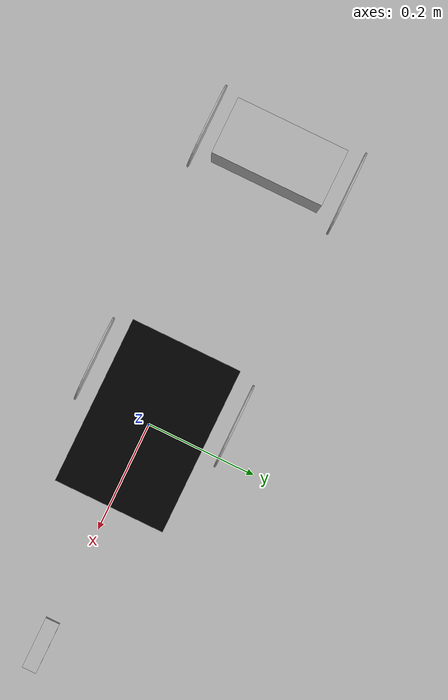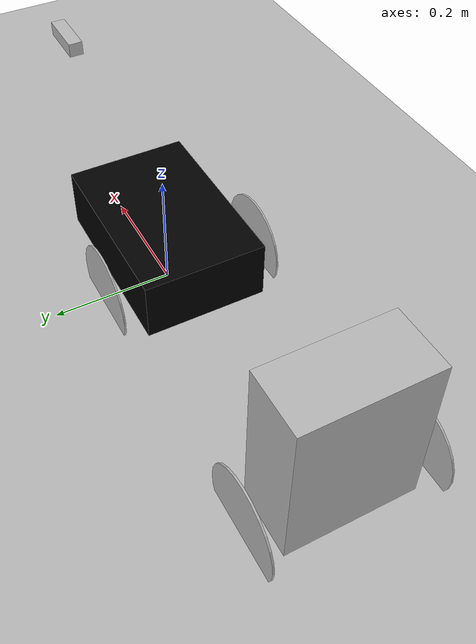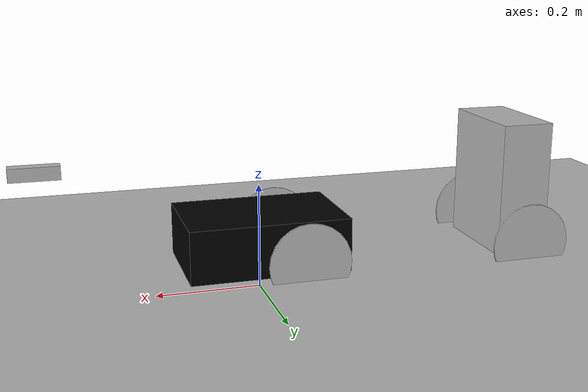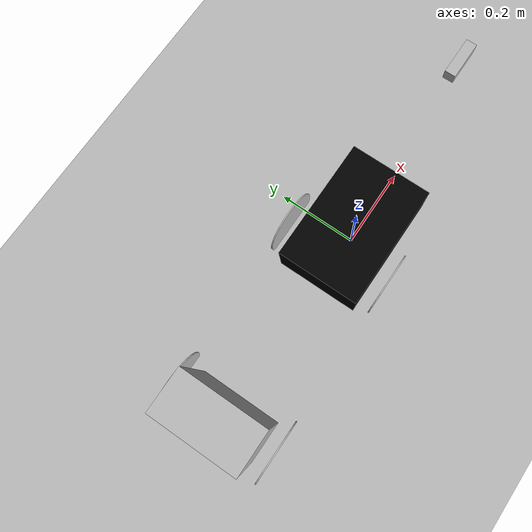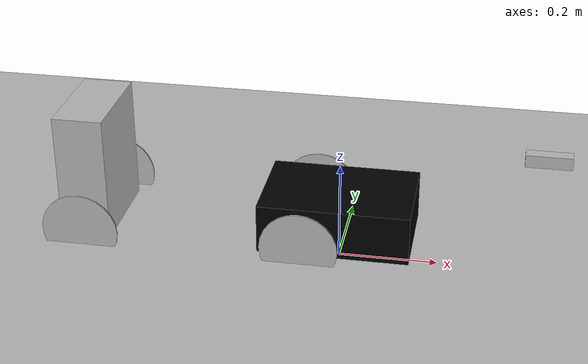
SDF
<sdf version="1.4">
 <world name="default">
  <model name="99hallway">
   <static>true</static>
   <link name="ground">
    <collision name="ground_collision"><geometry><box><size>50 50 0.1</size></box></geometry></collision>
    <visual name="ground_visual"><geometry><box><size>50 50 0.1</size></box></geometry></visual>
   </link>
  </model>
  <include><uri>model://sim_glide_description</uri></include>
 </world>
</sdf>

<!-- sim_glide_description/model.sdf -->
<sdf version="1.5">
      <model name="sim_glide_bot">
        <link name="base_link">
            <pose>0 0 0.1 0 0 0</pose>
            <collision name="base_collision">
                <geometry>
                    <box>
                        <size>0.3 0.2 0.1</size>
                    </box>
                </geometry>
            </collision>

            <visual name="base_visual">
                <geometry>
                    <box>
                        <size>0.3 0.2 0.1</size>
                    </box>
                </geometry>
                <material>
                    <ambient>0.0 0.0 0.0 1.0</ambient>
                    <diffuse>0.0 0.0 0.0 1.0</diffuse>
                    <specular>0.0 0.0 0.0 1.0</specular>
                    <emissive>0.0 0.0 0.0 1.0</emissive>
                </material>
            </visual>
        </link>

        <link name="front_left_wheel">
            <pose>-0.061900000000000004 0.13175 0.08 1.5707963267948966 0 3.14159265359</pose>
            <visual name ="front_left_wheel_visual">
                <geometry>
                    <cylinder>
                        <length>0.003</length>
                        <radius>0.077</radius>
                    </cylinder>
                </geometry>
            </visual>

            <inertial>
                <mass>5</mass>
                <inertia>
                    <ixx>7.90866056</ixx>
                    <ixy>0.00000006</ixy>
                    <ixz>0.0</ixz>
                    <iyy>7.90866056</iyy>
                    <iyz>0.0</iyz>
                    <izz>2.48398783</izz>
                </inertia>
            </inertial>

            <collision name ="front_left_wheel_collision">
                <geometry>
                    <cylinder>
                        <length>0.003</length>
                        <radius>0.077</radius>
                    </cylinder>
                </geometry>
            </collision>
        </link>

        <link name="front_right_wheel">
            <pose>-0.061900000000000004 -0.13175 0.08 1.5707963267948966 0 3.14159265359</pose>
            <visual name ="front_right_wheel_visual">
                <geometry>
                    <cylinder>
                        <radius>0.077</radius>
                        <length>0.003</length>
                    </cylinder>
                </geometry>
            </visual>

            <inertial>
                <mass>5</mass>
                <inertia>
                    <ixx>7.90866056</ixx>
                    <ixy>0.00000006</ixy>
                    <ixz>0.0</ixz>
                    <iyy>7.90866056</iyy>
                    <iyz>0.0</iyz>
                    <izz>2.48398783</izz>
                </inertia>
            </inertial>

            <collision name="front_right_wheel_collision">
                <geometry>
                    <cylinder>
                        <radius>0.077</radius>
                        <length>0.003</length>
                    </cylinder>
                </geometry>
            </collision>
        </link>

      <link name="rear_left_wheel">
        <pose>-0.5 0.13175 0.08 1.5707963267948966 0 3.14159265359</pose>
            <visual name ="rear_left_wheel_visual">
                <geometry>
                    <cylinder>
                        <length>0.003</length>
                        <radius>0.077</radius>
                    </cylinder>
                </geometry>
            </visual>

            <inertial>
                <mass>5</mass>
                <inertia>
                    <ixx>7.90866056</ixx>
                    <ixy>0.00000006</ixy>
                    <ixz>0.0</ixz>
                    <iyy>7.90866056</iyy>
                    <iyz>0.0</iyz>
                    <izz>2.48398783</izz>
                </inertia>
            </inertial>

            <collision name ="rear_left_wheel_collision">
                <geometry>
                    <cylinder>
                        <length>0.003</length>
                        <radius>0.077</radius>
                    </cylinder>
                </geometry>
            </collision>
      </link>

      <link name="rear_right_wheel">
        <pose>-0.5 -0.13175 0.08 1.5707963267948966 0 3.14159265359</pose>
            <visual name ="rear_right_steer_wheel_visual">
                <geometry>
                    <cylinder>
                        <radius>0.077</radius>
                        <length>0.003</length>
                    </cylinder>
                </geometry>
            </visual>

            <inertial>
                <mass>5</mass>
                <inertia>
                    <ixx>7.90866056</ixx>
                    <ixy>0.00000006</ixy>
                    <ixz>0.0</ixz>
                    <iyy>7.90866056</iyy>
                    <iyz>0.0</iyz>
                    <izz>2.48398783</izz>
                </inertia>
            </inertial>

            <collision name="rear_right_steer_wheel_collision">
                <geometry>
                    <cylinder>
                        <radius>0.077</radius>
                        <length>0.003</length>
                    </cylinder>
                </geometry>
            </collision>
      </link>

      <joint type="universal" name="front_left_wheel_joint">
        <pose>0 0 0 0 0 0</pose>
        <child>front_left_wheel</child>
        <parent>base_link</parent>
        <axis>
            <xyz>0 1 0</xyz>
            <limit>
                <lower>-0.9</lower>
                <upper>0.9</upper>
            </limit>
        </axis>
        <axis2>
            <xyz>0 0 1</xyz>
        </axis2>
      </joint>

      <joint type="universal" name="front_right_wheel_joint">
        <pose>0 0 0 0 0 0</pose>
        <child>front_right_wheel</child>
        <parent>base_link</parent>
        <axis>
            <xyz>0 1 0</xyz>
            <limit>
                <lower>-0.9</lower>
                <upper>0.9</upper>
            </limit>
        </axis>
        <axis2>
          <xyz>0 0 1</xyz>
        </axis2>
      </joint>

      <joint type="revolute" name="rear_left_wheel_joint">
          <child>rear_left_wheel</child>
          <parent>base_link</parent>
          <axis>
              <xyz>0 0 1</xyz>
          </axis>
      </joint>
      <joint type="revolute" name="rear_right_wheel_joint">
          <child>rear_right_wheel</child>
          <parent>base_link</parent>
          <axis>
              <xyz>0 0 1</xyz>
          </axis>
      </joint>

      <link name="human_link">
          <pose>-0.5 0.0 0.154 0 1.5707963267948966 0</pose>
          <visual name ="human_visual">
              <geometry>
                  <box>
                      <size>0.3 0.2 0.1</size>
                  </box>
              </geometry>
          </visual>

          <collision name="human_collision">
              <geometry>
                  <box>
                      <size>0.3 0.2 0.1</size>
                  </box>
              </geometry>
          </collision>
      </link>
      <joint name="base_to_human" type="fixed">
          <pose>0 0 0 0 0 0</pose>
          <parent>base_link</parent>
          <child>human_link</child>
      </joint>

    <link name="realsense_link">
      <pose>0.4 0 0.25 0 0 0</pose>
      <visual name="realsense_link_visual">
        <pose>0 0 0 0 0 -1.57</pose>
        <geometry>
          <box>
            <size>0.02505 0.090 0.025</size>
          </box>
        </geometry>
      </visual>
      <collision name="realsense_link_collision">
        <pose>0 0 0 -1.57 0 -1.57</pose>
        <geometry>
          <box>
            <size>0.02505 0.090 0.025</size>
          </box>
        </geometry>
      </collision>
      <inertial>
        <pose>0 0 0 0 0 0</pose>
        <inertia>
          <ixx>0.001</ixx>
          <ixy>0.000</ixy>
          <ixz>0.000</ixz>
          <iyy>0.001</iyy>
          <iyz>0.000</iyz>
          <izz>0.001</izz>
        </inertia>
        <mass>0.564</mass>
      </inertial>

      <sensor name="cameradepth" type="depth">
        <camera name="camera">
          <horizontal_fov>1.57</horizontal_fov>
          <image>
            <width>1280</width>
            <height>720</height>
          </image>
          <clip>
            <near>0.1</near>
            <far>100</far>
          </clip>
          <noise>
            <type>gaussian</type>
            <mean>0.0</mean>
            <stddev>0.100</stddev>
          </noise>
        </camera>
        <always_on>1</always_on>
        <update_rate>30</update_rate>
        <visualize>0</visualize>
      </sensor>
      <sensor name="cameracolor" type="camera">
        <camera name="camera">
          <horizontal_fov>1.57</horizontal_fov>
          <image>
            <width>1280</width>
            <height>720</height>
            <format>RGB_INT8</format>
          </image>
          <clip>
            <near>0.1</near>
            <far>100</far>
          </clip>
          <noise>
            <type>gaussian</type>
            <mean>0.0</mean>
            <stddev>0.007</stddev>
          </noise>
        </camera>
        <always_on>1</always_on>
        <update_rate>30</update_rate>
        <visualize>1</visualize>
      </sensor>
      <sensor name="cameraired1" type="camera">
        <camera name="camera">
          <horizontal_fov>1.57</horizontal_fov>
          <image>
            <width>1280</width>
            <height>720</height>
            <format>L_INT8</format>
          </image>
          <clip>
            <near>0.1</near>
            <far>100</far>
          </clip>
          <noise>
            <type>gaussian</type>
            <mean>0.0</mean>
            <stddev>0.05</stddev>
          </noise>
        </camera>
        <always_on>1</always_on>
        <update_rate>1</update_rate>
        <visualize>0</visualize>
      </sensor>
      <sensor name="cameraired2" type="camera">
        <camera name="camera">
          <horizontal_fov>1.57</horizontal_fov>
          <image>
            <width>1280</width>
            <height>720</height>
            <format>L_INT8</format>
          </image>
          <clip>
            <near>0.1</near>
            <far>100</far>
          </clip>
          <noise>
            <type>gaussian</type>
            <mean>0.0</mean>
            <stddev>0.05</stddev>
          </noise>
        </camera>
        <always_on>1</always_on>
        <update_rate>1</update_rate>
        <visualize>0</visualize>
      </sensor>
    </link>

    <joint name="realsense_joint" type="fixed">
      <parent>base_link</parent>
      <child>realsense_link</child>
      <pose>0.4 0 0.4 0 0 0</pose>
    </joint>

    <plugin name="camera" filename="librealsense_gazebo_plugin.so">
      <prefix>camera</prefix>
      <depthUpdateRate>30.0</depthUpdateRate>
      <colorUpdateRate>30.0</colorUpdateRate>
      <infraredUpdateRate>1.0</infraredUpdateRate>
      <depthTopicName>depth/image_rect_raw</depthTopicName>
      <depthCameraInfoTopicName>depth/camera_info</depthCameraInfoTopicName>
      <colorTopicName>color/image_raw</colorTopicName>
      <colorCameraInfoTopicName>color/camera_info</colorCameraInfoTopicName>
      <infrared1TopicName>infra1/image_raw</infrared1TopicName>
      <infrared1CameraInfoTopicName>infra1/camera_info</infrared1CameraInfoTopicName>
      <infrared2TopicName>infra2/image_raw</infrared2TopicName>
      <infrared2CameraInfoTopicName>infra2/camera_info</infrared2CameraInfoTopicName>
      <colorOpticalframeName>camera_color_optical_frame</colorOpticalframeName>
      <depthOpticalframeName>camera_depth_optical_frame</depthOpticalframeName>
      <infrared1OpticalframeName>camera_left_ir_optical_frame</infrared1OpticalframeName>
      <infrared2OpticalframeName>camera_right_ir_optical_frame</infrared2OpticalframeName>
      <rangeMinDepth>0.3</rangeMinDepth>
      <rangeMaxDepth>3.0</rangeMaxDepth>
      <pointCloud>true</pointCloud>
      <pointCloudTopicName>depth/color/points</pointCloudTopicName>
      <pointCloudCutoff>0.3</pointCloudCutoff>
    </plugin>

      <plugin name='ackermann_drive' filename='libgazebo_ros_ackermann_drive.so'>

        <update_rate>10.0</update_rate>

        <!-- wheels -->
        <front_left_joint>front_left_wheel_joint</front_left_joint>
        <front_right_joint>front_right_wheel_joint</front_right_joint>
        <rear_left_joint>rear_left_wheel_joint</rear_left_joint>
        <rear_right_joint>rear_right_wheel_joint</rear_right_joint>
        <left_steering_joint>front_left_wheel_joint</left_steering_joint>
        <right_steering_joint>front_right_wheel_joint</right_steering_joint>

        <!-- Max absolute steer angle for tyre in radians-->
        <!-- Any cmd_vel angular z greater than this would be capped -->
        <max_steer>0.2</max_steer>

        <!-- Max absolute steering angle of steering wheel -->
        <max_steering_angle>7.85</max_steering_angle>

        <!-- Max absolute linear speed in m/s -->
        <max_speed>1</max_speed>

        <!-- PID tuning -->
        <left_steering_pid_gain>1500 0 1</left_steering_pid_gain>
        <left_steering_i_range>0 0</left_steering_i_range>
        <right_steering_pid_gain>1500 0 1</right_steering_pid_gain>
        <right_steering_i_range>0 0</right_steering_i_range>
        <linear_velocity_pid_gain>1000 0 1</linear_velocity_pid_gain>
        <linear_velocity_i_range>0 0</linear_velocity_i_range>

        <!-- output -->
        <publish_odom>true</publish_odom>
        <publish_odom_tf>true</publish_odom_tf>
        <publish_wheel_tf>true</publish_wheel_tf>
        <publish_distance>true</publish_distance>

        <odometry_topic>odom</odometry_topic>
        <odometry_frame>odom</odometry_frame>
        <robot_base_frame>base_link</robot_base_frame>

        <ros>
          <remapping>odom:=wheel/odometry</remapping>
        </ros>

      </plugin>
    </model>
</sdf>
